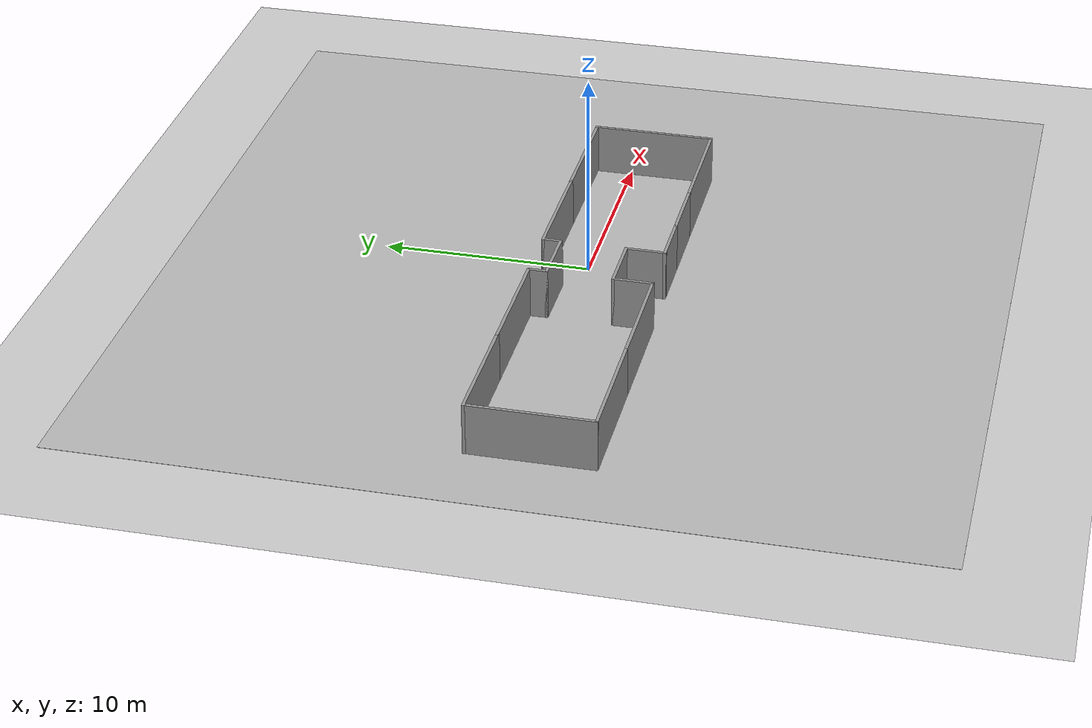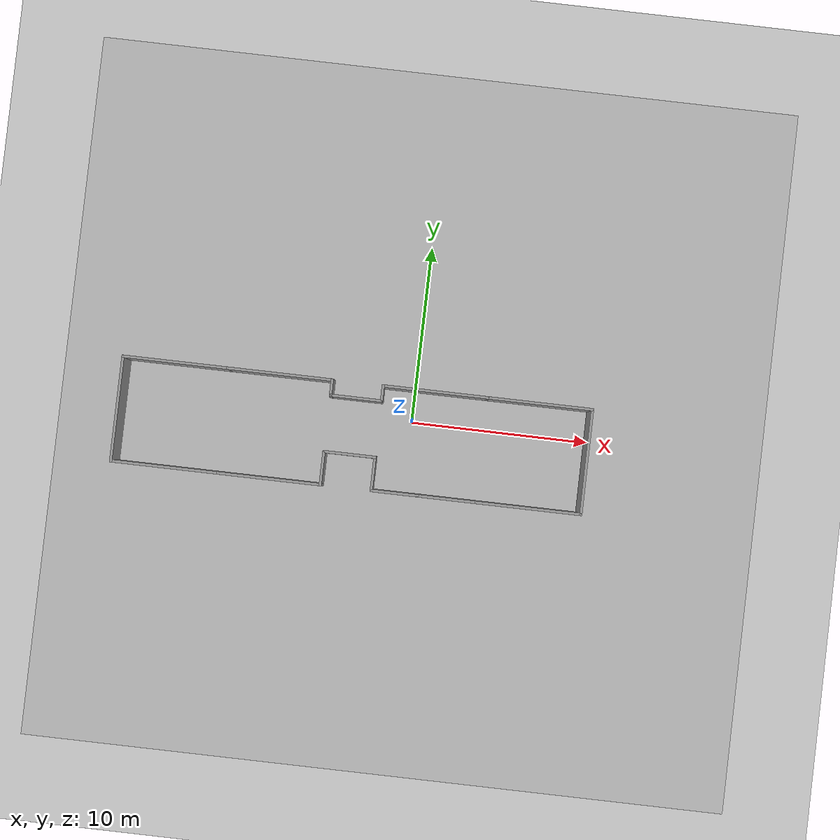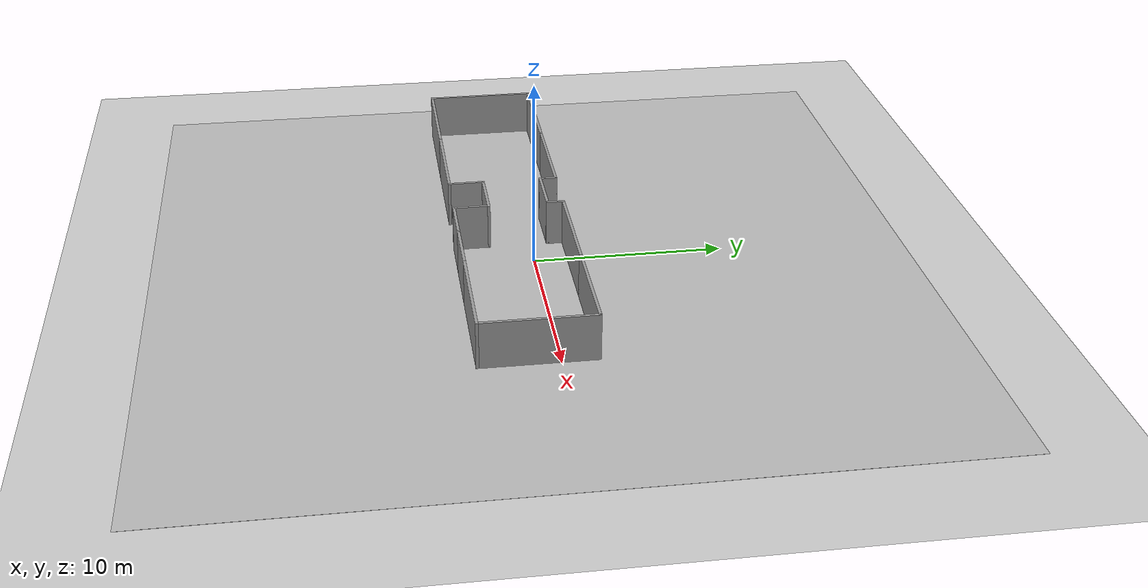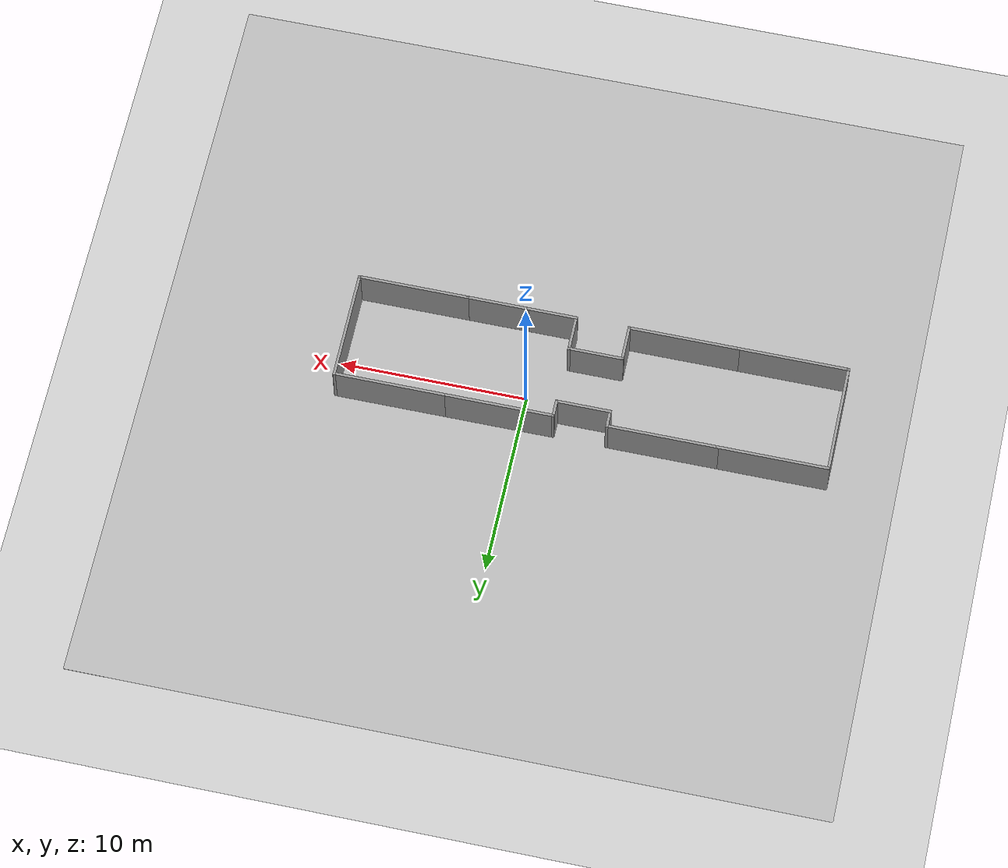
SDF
<sdf version="1.7">
 <world name="lab_world">
  <gravity>0 0 -9.8</gravity>
  <model name="ground_plane">
   <static>1</static>
   <link name="link">
    <collision name="collision">
     <geometry><plane><normal>0 0 1</normal><size>100 100</size></plane></geometry>
     <surface><friction><ode><mu>100</mu><mu2>50</mu2></ode></friction></surface>
    </collision>
    <visual name="visual">
     <cast_shadows>0</cast_shadows>
     <geometry><plane><normal>0 0 1</normal><size>100 100</size></plane></geometry>
     <material>
      <script><uri>file://media/materials/scripts/gazebo.material</uri><name>Gazebo/Grey</name></script>
     </material>
    </visual>
   </link>
  </model>
  <light name="sun" type="directional">
   <pose>0 0 10 0 -0 0</pose>
   <diffuse>0.8 0.8 0.8 1</diffuse>
   <specular>0.2 0.2 0.2 1</specular>
   <attenuation>
    <range>1000</range>
    <constant>0.9</constant>
    <linear>0.01</linear>
    <quadratic>0.001</quadratic>
   </attenuation>
   <direction>-0.5 0.1 -0.9</direction>
   <spot><inner_angle>0</inner_angle><outer_angle>0</outer_angle><falloff>0</falloff></spot>
  </light>
  <magnetic_field>6e-06 2.3e-05 -4.2e-05</magnetic_field>
  <atmosphere type="adiabatic"/>
  <physics type="ode">
   <max_step_size>0.001</max_step_size>
   <real_time_factor>1</real_time_factor>
   <real_time_update_rate>1000</real_time_update_rate>
  </physics>
  <scene><ambient>0.4 0.4 0.4 1</ambient><background>0.7 0.7 0.7 1</background><shadows>1</shadows></scene>
  <spherical_coordinates>
   <surface_model>EARTH_WGS84</surface_model>
   <latitude_deg>0</latitude_deg>
   <longitude_deg>0</longitude_deg>
   <elevation>0</elevation>
   <heading_deg>0</heading_deg>
  </spherical_coordinates>
  <model name="pass/sus">
   <pose>-3.265 -1.125 0 0 -0 0</pose>
   <link name="Wall_0">
    <collision name="Wall_0_Collision">
     <geometry><box><size>2.75 0.15 2.5</size></box></geometry>
     <pose>0 0 1.25 0 -0 0</pose>
    </collision>
    <visual name="Wall_0_Visual">
     <pose>0 0 1.25 0 -0 0</pose>
     <geometry><box><size>2.75 0.15 2.5</size></box></geometry>
     <material>
      <script><uri>file://media/materials/scripts/gazebo.material</uri><name>Gazebo/Grey</name></script>
      <ambient>1 1 1 1</ambient>
     </material>
     <meta><layer>0</layer></meta>
    </visual>
    <pose>2.725 -2.925 0 0 -0 3.14159</pose>
   </link>
   <link name="Wall_1">
    <collision name="Wall_1_Collision">
     <geometry><box><size>2 0.15 2.5</size></box></geometry>
     <pose>0 0 1.25 0 -0 0</pose>
    </collision>
    <visual name="Wall_1_Visual">
     <pose>0 0 1.25 0 -0 0</pose>
     <geometry><box><size>2 0.15 2.5</size></box></geometry>
     <material>
      <script><uri>file://media/materials/scripts/gazebo.material</uri><name>Gazebo/Grey</name></script>
      <ambient>1 1 1 1</ambient>
     </material>
     <meta><layer>0</layer></meta>
    </visual>
    <pose>1.425 -2 0 0 -0 1.5708</pose>
   </link>
   <link name="Wall_10">
    <collision name="Wall_10_Collision">
     <geometry><box><size>6 0.15 2.5</size></box></geometry>
     <pose>0 0 1.25 0 -0 0</pose>
    </collision>
    <visual name="Wall_10_Visual">
     <pose>0 0 1.25 0 -0 0</pose>
     <geometry><box><size>6 0.15 2.5</size></box></geometry>
     <material>
      <script><uri>file://media/materials/scripts/gazebo.material</uri><name>Gazebo/Grey</name></script>
      <ambient>1 1 1 1</ambient>
     </material>
     <meta><layer>0</layer></meta>
    </visual>
    <pose>4.35 2.925 0 0 -0 0</pose>
   </link>
   <link name="Wall_12">
    <collision name="Wall_12_Collision">
     <geometry><box><size>3.4 0.15 2.5</size></box></geometry>
     <pose>0 0 1.25 0 -0 0</pose>
    </collision>
    <visual name="Wall_12_Visual">
     <pose>0 0 1.25 0 -0 0</pose>
     <geometry><box><size>3.4 0.15 2.5</size></box></geometry>
     <material>
      <script><uri>file://media/materials/scripts/gazebo.material</uri><name>Gazebo/Grey</name></script>
      <ambient>1 1 1 1</ambient>
     </material>
     <meta><layer>0</layer></meta>
    </visual>
    <pose>5.65 -2.925 0 0 -0 3.14159</pose>
   </link>
   <link name="Wall_14">
    <collision name="Wall_14_Collision">
     <geometry><box><size>6 0.15 2.5</size></box></geometry>
     <pose>0 0 1.25 0 -0 0</pose>
    </collision>
    <visual name="Wall_14_Visual">
     <pose>0 0 1.25 0 -0 0</pose>
     <geometry><box><size>6 0.15 2.5</size></box></geometry>
     <material>
      <script><uri>file://media/materials/scripts/gazebo.material</uri><name>Gazebo/Grey</name></script>
      <ambient>1 1 1 1</ambient>
     </material>
     <meta><layer>0</layer></meta>
    </visual>
    <pose>10.2 2.925 0 0 -0 0</pose>
   </link>
   <link name="Wall_15">
    <collision name="Wall_15_Collision">
     <geometry><box><size>6 0.15 2.5</size></box></geometry>
     <pose>0 0 1.25 0 -0 0</pose>
    </collision>
    <visual name="Wall_15_Visual">
     <pose>0 0 1.25 0 -0 0</pose>
     <geometry><box><size>6 0.15 2.5</size></box></geometry>
     <material>
      <script><uri>file://media/materials/scripts/gazebo.material</uri><name>Gazebo/Grey</name></script>
      <ambient>1 1 1 1</ambient>
     </material>
     <meta><layer>0</layer></meta>
    </visual>
    <pose>13.125 0 0 0 -0 -1.5708</pose>
   </link>
   <link name="Wall_16">
    <collision name="Wall_16_Collision">
     <geometry><box><size>6 0.15 2.5</size></box></geometry>
     <pose>0 0 1.25 0 -0 0</pose>
    </collision>
    <visual name="Wall_16_Visual">
     <pose>0 0 1.25 0 -0 0</pose>
     <geometry><box><size>6 0.15 2.5</size></box></geometry>
     <material>
      <script><uri>file://media/materials/scripts/gazebo.material</uri><name>Gazebo/Grey</name></script>
      <ambient>1 1 1 1</ambient>
     </material>
     <meta><layer>0</layer></meta>
    </visual>
    <pose>10.2 -2.925 0 0 -0 3.14159</pose>
   </link>
   <link name="Wall_18">
    <collision name="Wall_18_Collision">
     <geometry><box><size>6 0.15 2.5</size></box></geometry>
     <pose>0 0 1.25 0 -0 0</pose>
    </collision>
    <visual name="Wall_18_Visual">
     <pose>0 0 1.25 0 -0 0</pose>
     <geometry><box><size>6 0.15 2.5</size></box></geometry>
     <material>
      <script><uri>file://media/materials/scripts/gazebo.material</uri><name>Gazebo/Grey</name></script>
      <ambient>1 1 1 1</ambient>
     </material>
     <meta><layer>0</layer></meta>
    </visual>
    <pose>-10.2 2.925 0 0 -0 3.14159</pose>
   </link>
   <link name="Wall_19">
    <collision name="Wall_19_Collision">
     <geometry><box><size>6 0.15 2.5</size></box></geometry>
     <pose>0 0 1.25 0 -0 0</pose>
    </collision>
    <visual name="Wall_19_Visual">
     <pose>0 0 1.25 0 -0 0</pose>
     <geometry><box><size>6 0.15 2.5</size></box></geometry>
     <material>
      <script><uri>file://media/materials/scripts/gazebo.material</uri><name>Gazebo/Grey</name></script>
      <ambient>1 1 1 1</ambient>
     </material>
     <meta><layer>0</layer></meta>
    </visual>
    <pose>-13.125 0 0 0 -0 -1.5708</pose>
   </link>
   <link name="Wall_2">
    <collision name="Wall_2_Collision">
     <geometry><box><size>3 0.15 2.5</size></box></geometry>
     <pose>0 0 1.25 0 -0 0</pose>
    </collision>
    <visual name="Wall_2_Visual">
     <pose>0 0 1.25 0 -0 0</pose>
     <geometry><box><size>3 0.15 2.5</size></box></geometry>
     <material>
      <script><uri>file://media/materials/scripts/gazebo.material</uri><name>Gazebo/Grey</name></script>
      <ambient>1 1 1 1</ambient>
     </material>
     <meta><layer>0</layer></meta>
    </visual>
    <pose>-0 -1.075 0 0 -0 3.14159</pose>
   </link>
   <link name="Wall_20">
    <collision name="Wall_20_Collision">
     <geometry><box><size>6 0.15 2.5</size></box></geometry>
     <pose>0 0 1.25 0 -0 0</pose>
    </collision>
    <visual name="Wall_20_Visual">
     <pose>0 0 1.25 0 -0 0</pose>
     <geometry><box><size>6 0.15 2.5</size></box></geometry>
     <material>
      <script><uri>file://media/materials/scripts/gazebo.material</uri><name>Gazebo/Grey</name></script>
      <ambient>1 1 1 1</ambient>
     </material>
     <meta><layer>0</layer></meta>
    </visual>
    <pose>-10.2 -2.925 0 0 -0 0</pose>
   </link>
   <link name="Wall_3">
    <collision name="Wall_3_Collision">
     <geometry><box><size>2 0.15 2.5</size></box></geometry>
     <pose>0 0 1.25 0 -0 0</pose>
    </collision>
    <visual name="Wall_3_Visual">
     <pose>0 0 1.25 0 -0 0</pose>
     <geometry><box><size>2 0.15 2.5</size></box></geometry>
     <material>
      <script><uri>file://media/materials/scripts/gazebo.material</uri><name>Gazebo/Grey</name></script>
      <ambient>1 1 1 1</ambient>
     </material>
     <meta><layer>0</layer></meta>
    </visual>
    <pose>-1.425 -2 0 0 -0 -1.5708</pose>
   </link>
   <link name="Wall_4">
    <collision name="Wall_4_Collision">
     <geometry><box><size>6 0.15 2.5</size></box></geometry>
     <pose>0 0 1.25 0 -0 0</pose>
    </collision>
    <visual name="Wall_4_Visual">
     <pose>0 0 1.25 0 -0 0</pose>
     <geometry><box><size>6 0.15 2.5</size></box></geometry>
     <material>
      <script><uri>file://media/materials/scripts/gazebo.material</uri><name>Gazebo/Grey</name></script>
      <ambient>1 1 1 1</ambient>
     </material>
     <meta><layer>0</layer></meta>
    </visual>
    <pose>-4.35 -2.925 0 0 -0 3.14159</pose>
   </link>
   <link name="Wall_6">
    <collision name="Wall_6_Collision">
     <geometry><box><size>6 0.15 2.5</size></box></geometry>
     <pose>0 0 1.25 0 -0 0</pose>
    </collision>
    <visual name="Wall_6_Visual">
     <pose>0 0 1.25 0 -0 0</pose>
     <geometry><box><size>6 0.15 2.5</size></box></geometry>
     <material>
      <script><uri>file://media/materials/scripts/gazebo.material</uri><name>Gazebo/Grey</name></script>
      <ambient>1 1 1 1</ambient>
     </material>
     <meta><layer>0</layer></meta>
    </visual>
    <pose>-4.35 2.925 0 0 -0 0</pose>
   </link>
   <link name="Wall_7">
    <collision name="Wall_7_Collision">
     <geometry><box><size>1 0.15 2.5</size></box></geometry>
     <pose>0 0 1.25 0 -0 0</pose>
    </collision>
    <visual name="Wall_7_Visual">
     <pose>0 0 1.25 0 -0 0</pose>
     <geometry><box><size>1 0.15 2.5</size></box></geometry>
     <material>
      <script><uri>file://media/materials/scripts/gazebo.material</uri><name>Gazebo/Grey</name></script>
      <ambient>1 1 1 1</ambient>
     </material>
     <meta><layer>0</layer></meta>
    </visual>
    <pose>-1.425 2.5 0 0 -0 -1.5708</pose>
   </link>
   <link name="Wall_8">
    <collision name="Wall_8_Collision">
     <geometry><box><size>3 0.15 2.5</size></box></geometry>
     <pose>0 0 1.25 0 -0 0</pose>
    </collision>
    <visual name="Wall_8_Visual">
     <pose>0 0 1.25 0 -0 0</pose>
     <geometry><box><size>3 0.15 2.5</size></box></geometry>
     <material>
      <script><uri>file://media/materials/scripts/gazebo.material</uri><name>Gazebo/Grey</name></script>
      <ambient>1 1 1 1</ambient>
     </material>
     <meta><layer>0</layer></meta>
    </visual>
    <pose>-0 2.075 0 0 -0 0</pose>
   </link>
   <link name="Wall_9">
    <collision name="Wall_9_Collision">
     <geometry><box><size>1 0.15 2.5</size></box></geometry>
     <pose>0 0 1.25 0 -0 0</pose>
    </collision>
    <visual name="Wall_9_Visual">
     <pose>0 0 1.25 0 -0 0</pose>
     <geometry><box><size>1 0.15 2.5</size></box></geometry>
     <material>
      <script><uri>file://media/materials/scripts/gazebo.material</uri><name>Gazebo/Grey</name></script>
      <ambient>1 1 1 1</ambient>
     </material>
     <meta><layer>0</layer></meta>
    </visual>
    <pose>1.425 2.5 0 0 -0 1.5708</pose>
   </link>
   <static>1</static>
  </model>
  <model name="Floor">
   <link name="main">
    <pose>0 0 0.01 0 -0 0</pose>
    <collision name="main_Collision"><geometry><box><size>40 40 0.01</size></box></geometry></collision>
    <visual name="main_Visual">
     <geometry><box><size>40 40 0.01</size></box></geometry>
     <material>
      <script>
       <uri>model://Floor/materials/scripts</uri>
       <uri>model://Floor/materials/textures</uri>
       <name>floor</name>
      </script>
     </material>
    </visual>
   </link>
   <static>1</static>
   <pose>-0.060534 -0.03882 0 0 -0 0</pose>
  </model>
 </world>
</sdf>
